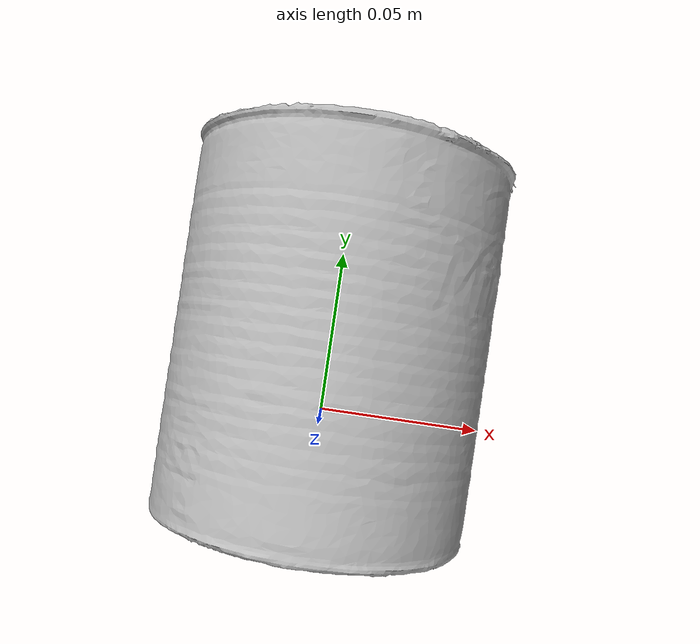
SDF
<?xml version='1.0'?>
<sdf version="1.4">
  <model name="Sauerkraut">
    <static>false</static>
    <link name="link">
      <inertial>
        <pose>0.00017395144392666584 0.021687617596055395 -0.0041044264144471845 1.5426132894129487 -0.09599556580194861 -3.139324692151271</pose>
        <mass>0.0953570673091761</mass>
        <inertia>
          <ixx>0.0001730526940180882</ixx>
          <ixy>-2.6565119378888816e-21</ixy>
          <ixz>-1.130620360784467e-21</ixz>
          <iyy>0.0001724754509125192</iyy>
          <iyz>-1.6731656104759546e-20</iyz>
          <izz>0.00012162671155775592</izz>
        </inertia>
      </inertial>
      <collision name="collision">
        <geometry>
          <mesh>
            <!-- Use a downsampled mesh for collisions -->
            <uri>model:///Sauerkraut/Sauerkraut_250_collision.obj</uri>
	        </mesh>
        </geometry>
        <surface>
      </surface>
      </collision>
      <visual name="visual">
        <geometry>
          <mesh>
            <uri>model:///Sauerkraut/Sauerkraut_25k_tex.obj</uri>
	        </mesh>
        </geometry>
        <material>
          <script>
            <uri>model:///Sauerkraut/Sauerkraut.material</uri>
            <name>Sauerkraut</name>
          </script>
        </material>
      </visual>
    </link>
  </model>
</sdf>
